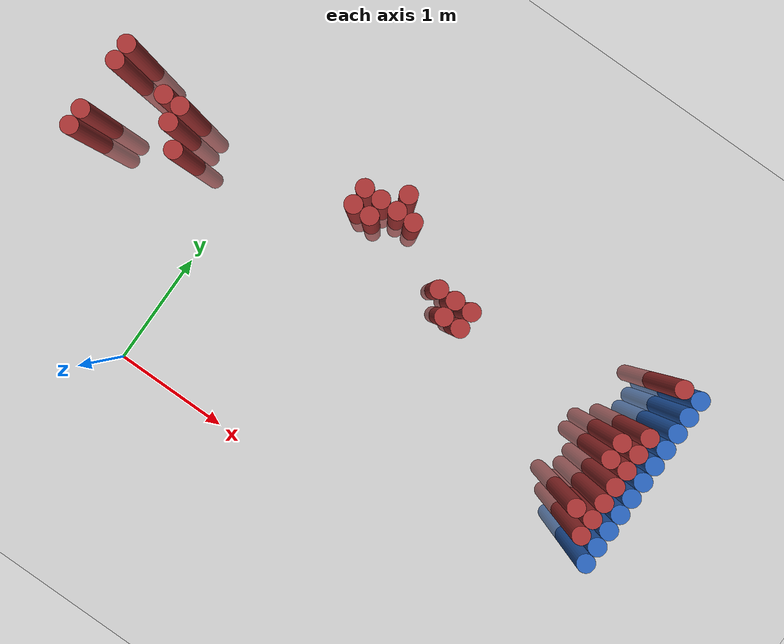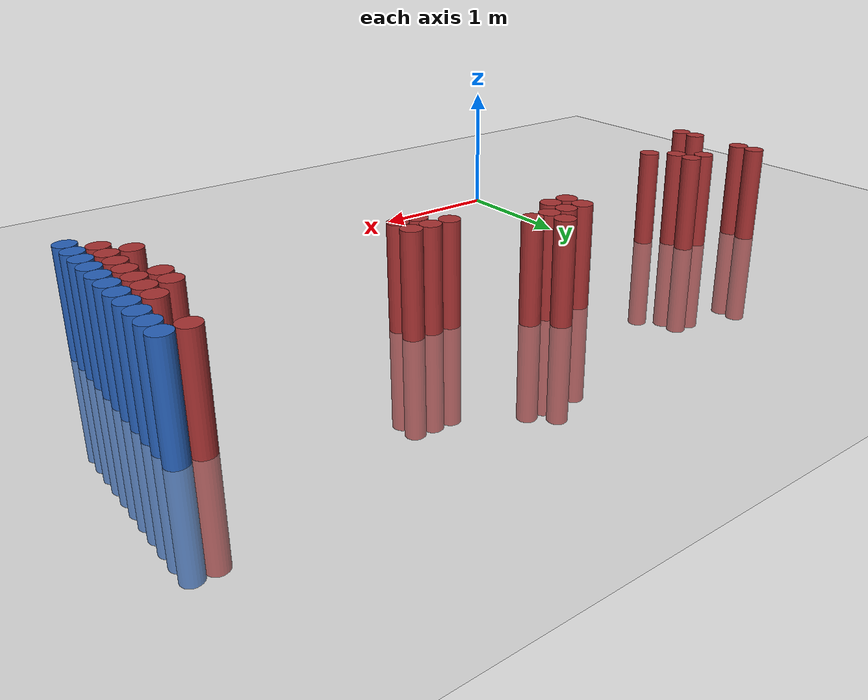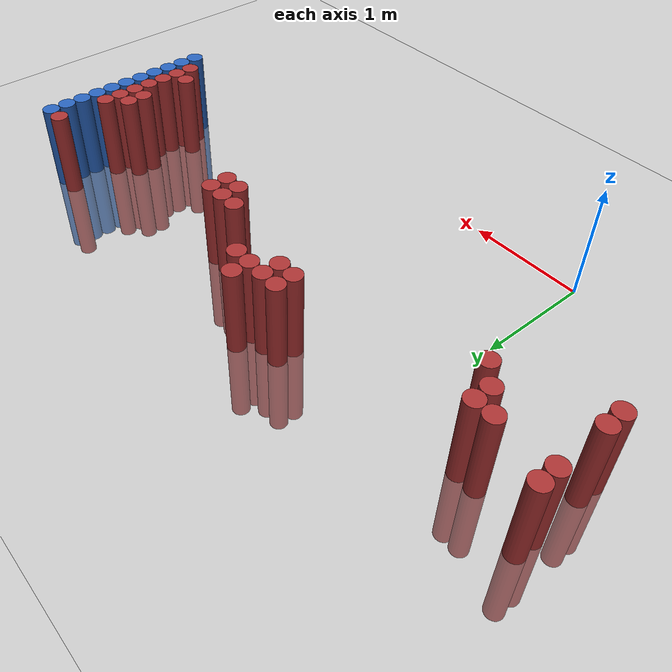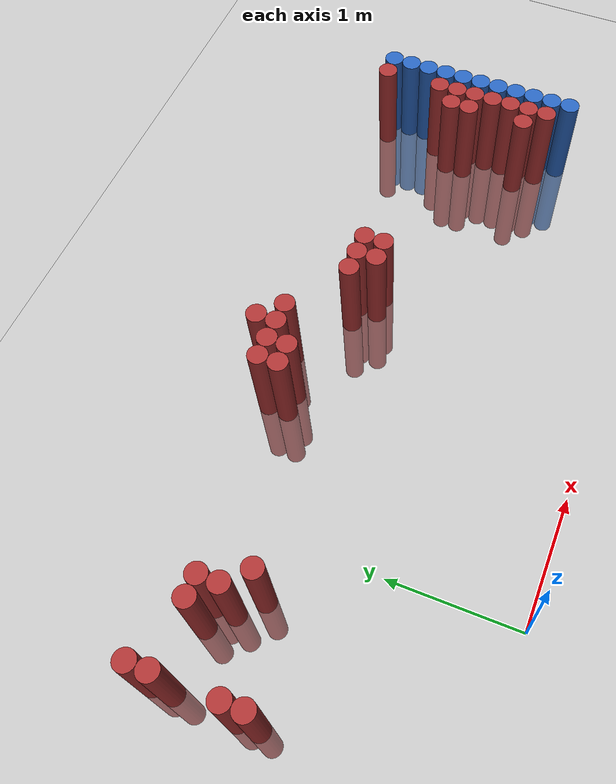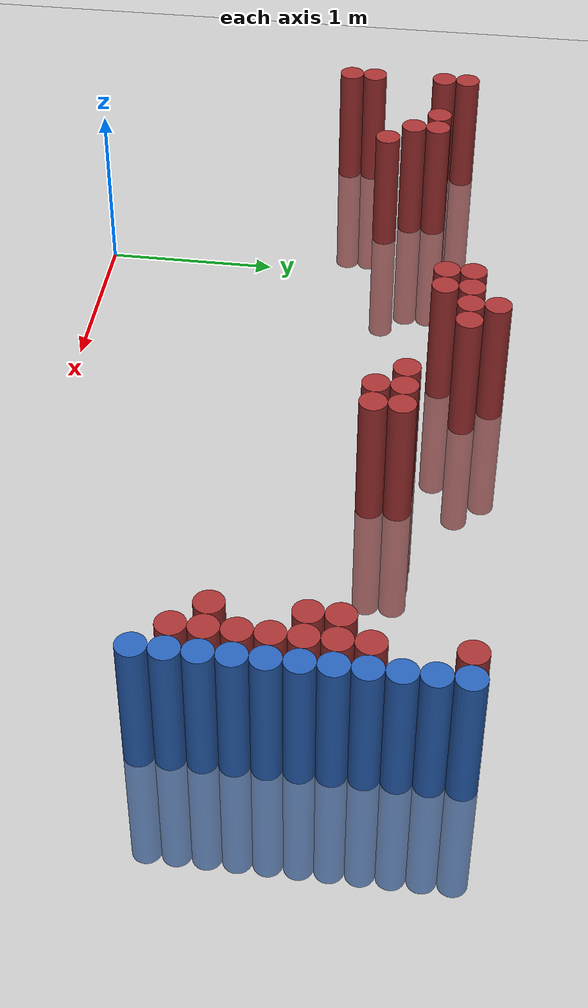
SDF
<sdf version="1.6">
 <world name="default">
  <model name="ground_plane">
   <static>1</static>
   <link name="link">
    <collision name="collision">
     <geometry><plane><normal>0 0 1</normal><size>100 100</size></plane></geometry>
     <surface><friction><ode><mu>100</mu><mu2>50</mu2></ode></friction></surface>
    </collision>
    <visual name="visual">
     <cast_shadows>0</cast_shadows>
     <geometry><plane><normal>0 0 1</normal><size>100 100</size></plane></geometry>
     <material>
      <script><uri>file://media/materials/scripts/gazebo.material</uri><name>Gazebo/Grey</name></script>
     </material>
    </visual>
   </link>
  </model>
  <model name="unit_cylinder_128">
   <static>1</static>
   <pose>3.925000 1.075000 0.000000 0.000000 0.000000 0.000000</pose>
   <link name="link">
    <inertial>
     <mass>1</mass>
     <inertia><ixx>0.145833</ixx><ixy>0</ixy><ixz>0</ixz><iyy>0.145833</iyy><iyz>0</iyz><izz>0.125</izz></inertia>
    </inertial>
    <collision name="collision">
     <geometry><cylinder><radius>0.075000</radius><length>1.5</length></cylinder></geometry>
    </collision>
    <visual name="visual">
     <geometry><cylinder><radius>0.075000</radius><length>1.5</length></cylinder></geometry>
     <material>
      <ambient>0.152000 0.379000 0.720000 1</ambient>
      <diffuse>0.152000 0.379000 0.720000 1</diffuse>
     </material>
     <material>
      <script><name>Gazebo/Grey</name><uri>file://media/materials/scripts/gazebo.material</uri></script>
     </material>
    </visual>
   </link>
  </model>
  <model name="unit_cylinder_130">
   <static>1</static>
   <pose>3.925000 1.225000 0.000000 0.000000 0.000000 0.000000</pose>
   <link name="link">
    <inertial>
     <mass>1</mass>
     <inertia><ixx>0.145833</ixx><ixy>0</ixy><ixz>0</ixz><iyy>0.145833</iyy><iyz>0</iyz><izz>0.125</izz></inertia>
    </inertial>
    <collision name="collision">
     <geometry><cylinder><radius>0.075000</radius><length>1.5</length></cylinder></geometry>
    </collision>
    <visual name="visual">
     <geometry><cylinder><radius>0.075000</radius><length>1.5</length></cylinder></geometry>
     <material>
      <ambient>0.152000 0.379000 0.720000 1</ambient>
      <diffuse>0.152000 0.379000 0.720000 1</diffuse>
     </material>
     <material>
      <script><name>Gazebo/Grey</name><uri>file://media/materials/scripts/gazebo.material</uri></script>
     </material>
    </visual>
   </link>
  </model>
  <model name="unit_cylinder_132">
   <static>1</static>
   <pose>3.925000 1.375000 0.000000 0.000000 0.000000 0.000000</pose>
   <link name="link">
    <inertial>
     <mass>1</mass>
     <inertia><ixx>0.145833</ixx><ixy>0</ixy><ixz>0</ixz><iyy>0.145833</iyy><iyz>0</iyz><izz>0.125</izz></inertia>
    </inertial>
    <collision name="collision">
     <geometry><cylinder><radius>0.075000</radius><length>1.5</length></cylinder></geometry>
    </collision>
    <visual name="visual">
     <geometry><cylinder><radius>0.075000</radius><length>1.5</length></cylinder></geometry>
     <material>
      <ambient>0.152000 0.379000 0.720000 1</ambient>
      <diffuse>0.152000 0.379000 0.720000 1</diffuse>
     </material>
     <material>
      <script><name>Gazebo/Grey</name><uri>file://media/materials/scripts/gazebo.material</uri></script>
     </material>
    </visual>
   </link>
  </model>
  <model name="unit_cylinder_134">
   <static>1</static>
   <pose>3.925000 1.525000 0.000000 0.000000 0.000000 0.000000</pose>
   <link name="link">
    <inertial>
     <mass>1</mass>
     <inertia><ixx>0.145833</ixx><ixy>0</ixy><ixz>0</ixz><iyy>0.145833</iyy><iyz>0</iyz><izz>0.125</izz></inertia>
    </inertial>
    <collision name="collision">
     <geometry><cylinder><radius>0.075000</radius><length>1.5</length></cylinder></geometry>
    </collision>
    <visual name="visual">
     <geometry><cylinder><radius>0.075000</radius><length>1.5</length></cylinder></geometry>
     <material>
      <ambient>0.152000 0.379000 0.720000 1</ambient>
      <diffuse>0.152000 0.379000 0.720000 1</diffuse>
     </material>
     <material>
      <script><name>Gazebo/Grey</name><uri>file://media/materials/scripts/gazebo.material</uri></script>
     </material>
    </visual>
   </link>
  </model>
  <model name="unit_cylinder_136">
   <static>1</static>
   <pose>3.925000 1.675000 0.000000 0.000000 0.000000 0.000000</pose>
   <link name="link">
    <inertial>
     <mass>1</mass>
     <inertia><ixx>0.145833</ixx><ixy>0</ixy><ixz>0</ixz><iyy>0.145833</iyy><iyz>0</iyz><izz>0.125</izz></inertia>
    </inertial>
    <collision name="collision">
     <geometry><cylinder><radius>0.075000</radius><length>1.5</length></cylinder></geometry>
    </collision>
    <visual name="visual">
     <geometry><cylinder><radius>0.075000</radius><length>1.5</length></cylinder></geometry>
     <material>
      <ambient>0.152000 0.379000 0.720000 1</ambient>
      <diffuse>0.152000 0.379000 0.720000 1</diffuse>
     </material>
     <material>
      <script><name>Gazebo/Grey</name><uri>file://media/materials/scripts/gazebo.material</uri></script>
     </material>
    </visual>
   </link>
  </model>
  <model name="unit_cylinder_138">
   <static>1</static>
   <pose>3.925000 1.825000 0.000000 0.000000 0.000000 0.000000</pose>
   <link name="link">
    <inertial>
     <mass>1</mass>
     <inertia><ixx>0.145833</ixx><ixy>0</ixy><ixz>0</ixz><iyy>0.145833</iyy><iyz>0</iyz><izz>0.125</izz></inertia>
    </inertial>
    <collision name="collision">
     <geometry><cylinder><radius>0.075000</radius><length>1.5</length></cylinder></geometry>
    </collision>
    <visual name="visual">
     <geometry><cylinder><radius>0.075000</radius><length>1.5</length></cylinder></geometry>
     <material>
      <ambient>0.152000 0.379000 0.720000 1</ambient>
      <diffuse>0.152000 0.379000 0.720000 1</diffuse>
     </material>
     <material>
      <script><name>Gazebo/Grey</name><uri>file://media/materials/scripts/gazebo.material</uri></script>
     </material>
    </visual>
   </link>
  </model>
  <model name="unit_cylinder_140">
   <static>1</static>
   <pose>3.925000 1.975000 0.000000 0.000000 0.000000 0.000000</pose>
   <link name="link">
    <inertial>
     <mass>1</mass>
     <inertia><ixx>0.145833</ixx><ixy>0</ixy><ixz>0</ixz><iyy>0.145833</iyy><iyz>0</iyz><izz>0.125</izz></inertia>
    </inertial>
    <collision name="collision">
     <geometry><cylinder><radius>0.075000</radius><length>1.5</length></cylinder></geometry>
    </collision>
    <visual name="visual">
     <geometry><cylinder><radius>0.075000</radius><length>1.5</length></cylinder></geometry>
     <material>
      <ambient>0.152000 0.379000 0.720000 1</ambient>
      <diffuse>0.152000 0.379000 0.720000 1</diffuse>
     </material>
     <material>
      <script><name>Gazebo/Grey</name><uri>file://media/materials/scripts/gazebo.material</uri></script>
     </material>
    </visual>
   </link>
  </model>
  <model name="unit_cylinder_142">
   <static>1</static>
   <pose>3.925000 2.125000 0.000000 0.000000 0.000000 0.000000</pose>
   <link name="link">
    <inertial>
     <mass>1</mass>
     <inertia><ixx>0.145833</ixx><ixy>0</ixy><ixz>0</ixz><iyy>0.145833</iyy><iyz>0</iyz><izz>0.125</izz></inertia>
    </inertial>
    <collision name="collision">
     <geometry><cylinder><radius>0.075000</radius><length>1.5</length></cylinder></geometry>
    </collision>
    <visual name="visual">
     <geometry><cylinder><radius>0.075000</radius><length>1.5</length></cylinder></geometry>
     <material>
      <ambient>0.152000 0.379000 0.720000 1</ambient>
      <diffuse>0.152000 0.379000 0.720000 1</diffuse>
     </material>
     <material>
      <script><name>Gazebo/Grey</name><uri>file://media/materials/scripts/gazebo.material</uri></script>
     </material>
    </visual>
   </link>
  </model>
  <model name="unit_cylinder_144">
   <static>1</static>
   <pose>3.925000 2.275000 0.000000 0.000000 0.000000 0.000000</pose>
   <link name="link">
    <inertial>
     <mass>1</mass>
     <inertia><ixx>0.145833</ixx><ixy>0</ixy><ixz>0</ixz><iyy>0.145833</iyy><iyz>0</iyz><izz>0.125</izz></inertia>
    </inertial>
    <collision name="collision">
     <geometry><cylinder><radius>0.075000</radius><length>1.5</length></cylinder></geometry>
    </collision>
    <visual name="visual">
     <geometry><cylinder><radius>0.075000</radius><length>1.5</length></cylinder></geometry>
     <material>
      <ambient>0.152000 0.379000 0.720000 1</ambient>
      <diffuse>0.152000 0.379000 0.720000 1</diffuse>
     </material>
     <material>
      <script><name>Gazebo/Grey</name><uri>file://media/materials/scripts/gazebo.material</uri></script>
     </material>
    </visual>
   </link>
  </model>
  <model name="unit_cylinder_146">
   <static>1</static>
   <pose>3.925000 2.425000 0.000000 0.000000 0.000000 0.000000</pose>
   <link name="link">
    <inertial>
     <mass>1</mass>
     <inertia><ixx>0.145833</ixx><ixy>0</ixy><ixz>0</ixz><iyy>0.145833</iyy><iyz>0</iyz><izz>0.125</izz></inertia>
    </inertial>
    <collision name="collision">
     <geometry><cylinder><radius>0.075000</radius><length>1.5</length></cylinder></geometry>
    </collision>
    <visual name="visual">
     <geometry><cylinder><radius>0.075000</radius><length>1.5</length></cylinder></geometry>
     <material>
      <ambient>0.152000 0.379000 0.720000 1</ambient>
      <diffuse>0.152000 0.379000 0.720000 1</diffuse>
     </material>
     <material>
      <script><name>Gazebo/Grey</name><uri>file://media/materials/scripts/gazebo.material</uri></script>
     </material>
    </visual>
   </link>
  </model>
  <model name="unit_cylinder_314">
   <static>1</static>
   <pose>-1.175000 1.375000 0.000000 0.000000 0.000000 0.000000</pose>
   <link name="link">
    <inertial>
     <mass>1</mass>
     <inertia><ixx>0.145833</ixx><ixy>0</ixy><ixz>0</ixz><iyy>0.145833</iyy><iyz>0</iyz><izz>0.125</izz></inertia>
    </inertial>
    <collision name="collision">
     <geometry><cylinder><radius>0.075000</radius><length>1.5</length></cylinder></geometry>
    </collision>
    <visual name="visual">
     <geometry><cylinder><radius>0.075000</radius><length>1.5</length></cylinder></geometry>
     <material>
      <ambient>0.648000 0.192000 0.192000 1</ambient>
      <diffuse>0.648000 0.192000 0.192000 1</diffuse>
     </material>
     <material>
      <script><name>Gazebo/Grey</name><uri>file://media/materials/scripts/gazebo.material</uri></script>
     </material>
    </visual>
   </link>
  </model>
  <model name="unit_cylinder_315">
   <static>1</static>
   <pose>-1.175000 1.525000 0.000000 0.000000 0.000000 0.000000</pose>
   <link name="link">
    <inertial>
     <mass>1</mass>
     <inertia><ixx>0.145833</ixx><ixy>0</ixy><ixz>0</ixz><iyy>0.145833</iyy><iyz>0</iyz><izz>0.125</izz></inertia>
    </inertial>
    <collision name="collision">
     <geometry><cylinder><radius>0.075000</radius><length>1.5</length></cylinder></geometry>
    </collision>
    <visual name="visual">
     <geometry><cylinder><radius>0.075000</radius><length>1.5</length></cylinder></geometry>
     <material>
      <ambient>0.648000 0.192000 0.192000 1</ambient>
      <diffuse>0.648000 0.192000 0.192000 1</diffuse>
     </material>
     <material>
      <script><name>Gazebo/Grey</name><uri>file://media/materials/scripts/gazebo.material</uri></script>
     </material>
    </visual>
   </link>
  </model>
  <model name="unit_cylinder_316">
   <static>1</static>
   <pose>-1.175000 1.975000 0.000000 0.000000 0.000000 0.000000</pose>
   <link name="link">
    <inertial>
     <mass>1</mass>
     <inertia><ixx>0.145833</ixx><ixy>0</ixy><ixz>0</ixz><iyy>0.145833</iyy><iyz>0</iyz><izz>0.125</izz></inertia>
    </inertial>
    <collision name="collision">
     <geometry><cylinder><radius>0.075000</radius><length>1.5</length></cylinder></geometry>
    </collision>
    <visual name="visual">
     <geometry><cylinder><radius>0.075000</radius><length>1.5</length></cylinder></geometry>
     <material>
      <ambient>0.648000 0.192000 0.192000 1</ambient>
      <diffuse>0.648000 0.192000 0.192000 1</diffuse>
     </material>
     <material>
      <script><name>Gazebo/Grey</name><uri>file://media/materials/scripts/gazebo.material</uri></script>
     </material>
    </visual>
   </link>
  </model>
  <model name="unit_cylinder_317">
   <static>1</static>
   <pose>-1.175000 2.125000 0.000000 0.000000 0.000000 0.000000</pose>
   <link name="link">
    <inertial>
     <mass>1</mass>
     <inertia><ixx>0.145833</ixx><ixy>0</ixy><ixz>0</ixz><iyy>0.145833</iyy><iyz>0</iyz><izz>0.125</izz></inertia>
    </inertial>
    <collision name="collision">
     <geometry><cylinder><radius>0.075000</radius><length>1.5</length></cylinder></geometry>
    </collision>
    <visual name="visual">
     <geometry><cylinder><radius>0.075000</radius><length>1.5</length></cylinder></geometry>
     <material>
      <ambient>0.648000 0.192000 0.192000 1</ambient>
      <diffuse>0.648000 0.192000 0.192000 1</diffuse>
     </material>
     <material>
      <script><name>Gazebo/Grey</name><uri>file://media/materials/scripts/gazebo.material</uri></script>
     </material>
    </visual>
   </link>
  </model>
  <model name="unit_cylinder_326">
   <static>1</static>
   <pose>-0.725000 1.975000 0.000000 0.000000 0.000000 0.000000</pose>
   <link name="link">
    <inertial>
     <mass>1</mass>
     <inertia><ixx>0.145833</ixx><ixy>0</ixy><ixz>0</ixz><iyy>0.145833</iyy><iyz>0</iyz><izz>0.125</izz></inertia>
    </inertial>
    <collision name="collision">
     <geometry><cylinder><radius>0.075000</radius><length>1.5</length></cylinder></geometry>
    </collision>
    <visual name="visual">
     <geometry><cylinder><radius>0.075000</radius><length>1.5</length></cylinder></geometry>
     <material>
      <ambient>0.648000 0.192000 0.192000 1</ambient>
      <diffuse>0.648000 0.192000 0.192000 1</diffuse>
     </material>
     <material>
      <script><name>Gazebo/Grey</name><uri>file://media/materials/scripts/gazebo.material</uri></script>
     </material>
    </visual>
   </link>
  </model>
  <model name="unit_cylinder_333">
   <static>1</static>
   <pose>-0.575000 1.825000 0.000000 0.000000 0.000000 0.000000</pose>
   <link name="link">
    <inertial>
     <mass>1</mass>
     <inertia><ixx>0.145833</ixx><ixy>0</ixy><ixz>0</ixz><iyy>0.145833</iyy><iyz>0</iyz><izz>0.125</izz></inertia>
    </inertial>
    <collision name="collision">
     <geometry><cylinder><radius>0.075000</radius><length>1.5</length></cylinder></geometry>
    </collision>
    <visual name="visual">
     <geometry><cylinder><radius>0.075000</radius><length>1.5</length></cylinder></geometry>
     <material>
      <ambient>0.648000 0.192000 0.192000 1</ambient>
      <diffuse>0.648000 0.192000 0.192000 1</diffuse>
     </material>
     <material>
      <script><name>Gazebo/Grey</name><uri>file://media/materials/scripts/gazebo.material</uri></script>
     </material>
    </visual>
   </link>
  </model>
  <model name="unit_cylinder_334">
   <static>1</static>
   <pose>-0.575000 1.975000 0.000000 0.000000 0.000000 0.000000</pose>
   <link name="link">
    <inertial>
     <mass>1</mass>
     <inertia><ixx>0.145833</ixx><ixy>0</ixy><ixz>0</ixz><iyy>0.145833</iyy><iyz>0</iyz><izz>0.125</izz></inertia>
    </inertial>
    <collision name="collision">
     <geometry><cylinder><radius>0.075000</radius><length>1.5</length></cylinder></geometry>
    </collision>
    <visual name="visual">
     <geometry><cylinder><radius>0.075000</radius><length>1.5</length></cylinder></geometry>
     <material>
      <ambient>0.648000 0.192000 0.192000 1</ambient>
      <diffuse>0.648000 0.192000 0.192000 1</diffuse>
     </material>
     <material>
      <script><name>Gazebo/Grey</name><uri>file://media/materials/scripts/gazebo.material</uri></script>
     </material>
    </visual>
   </link>
  </model>
  <model name="unit_cylinder_339">
   <static>1</static>
   <pose>-0.425000 1.675000 0.000000 0.000000 0.000000 0.000000</pose>
   <link name="link">
    <inertial>
     <mass>1</mass>
     <inertia><ixx>0.145833</ixx><ixy>0</ixy><ixz>0</ixz><iyy>0.145833</iyy><iyz>0</iyz><izz>0.125</izz></inertia>
    </inertial>
    <collision name="collision">
     <geometry><cylinder><radius>0.075000</radius><length>1.5</length></cylinder></geometry>
    </collision>
    <visual name="visual">
     <geometry><cylinder><radius>0.075000</radius><length>1.5</length></cylinder></geometry>
     <material>
      <ambient>0.648000 0.192000 0.192000 1</ambient>
      <diffuse>0.648000 0.192000 0.192000 1</diffuse>
     </material>
     <material>
      <script><name>Gazebo/Grey</name><uri>file://media/materials/scripts/gazebo.material</uri></script>
     </material>
    </visual>
   </link>
  </model>
  <model name="unit_cylinder_351">
   <static>1</static>
   <pose>0.925000 2.125000 0.000000 0.000000 0.000000 0.000000</pose>
   <link name="link">
    <inertial>
     <mass>1</mass>
     <inertia><ixx>0.145833</ixx><ixy>0</ixy><ixz>0</ixz><iyy>0.145833</iyy><iyz>0</iyz><izz>0.125</izz></inertia>
    </inertial>
    <collision name="collision">
     <geometry><cylinder><radius>0.075000</radius><length>1.5</length></cylinder></geometry>
    </collision>
    <visual name="visual">
     <geometry><cylinder><radius>0.075000</radius><length>1.5</length></cylinder></geometry>
     <material>
      <ambient>0.648000 0.192000 0.192000 1</ambient>
      <diffuse>0.648000 0.192000 0.192000 1</diffuse>
     </material>
     <material>
      <script><name>Gazebo/Grey</name><uri>file://media/materials/scripts/gazebo.material</uri></script>
     </material>
    </visual>
   </link>
  </model>
  <model name="unit_cylinder_352">
   <static>1</static>
   <pose>0.925000 2.275000 0.000000 0.000000 0.000000 0.000000</pose>
   <link name="link">
    <inertial>
     <mass>1</mass>
     <inertia><ixx>0.145833</ixx><ixy>0</ixy><ixz>0</ixz><iyy>0.145833</iyy><iyz>0</iyz><izz>0.125</izz></inertia>
    </inertial>
    <collision name="collision">
     <geometry><cylinder><radius>0.075000</radius><length>1.5</length></cylinder></geometry>
    </collision>
    <visual name="visual">
     <geometry><cylinder><radius>0.075000</radius><length>1.5</length></cylinder></geometry>
     <material>
      <ambient>0.648000 0.192000 0.192000 1</ambient>
      <diffuse>0.648000 0.192000 0.192000 1</diffuse>
     </material>
     <material>
      <script><name>Gazebo/Grey</name><uri>file://media/materials/scripts/gazebo.material</uri></script>
     </material>
    </visual>
   </link>
  </model>
  <model name="unit_cylinder_359">
   <static>1</static>
   <pose>1.075000 2.125000 0.000000 0.000000 0.000000 0.000000</pose>
   <link name="link">
    <inertial>
     <mass>1</mass>
     <inertia><ixx>0.145833</ixx><ixy>0</ixy><ixz>0</ixz><iyy>0.145833</iyy><iyz>0</iyz><izz>0.125</izz></inertia>
    </inertial>
    <collision name="collision">
     <geometry><cylinder><radius>0.075000</radius><length>1.5</length></cylinder></geometry>
    </collision>
    <visual name="visual">
     <geometry><cylinder><radius>0.075000</radius><length>1.5</length></cylinder></geometry>
     <material>
      <ambient>0.648000 0.192000 0.192000 1</ambient>
      <diffuse>0.648000 0.192000 0.192000 1</diffuse>
     </material>
     <material>
      <script><name>Gazebo/Grey</name><uri>file://media/materials/scripts/gazebo.material</uri></script>
     </material>
    </visual>
   </link>
  </model>
  <model name="unit_cylinder_360">
   <static>1</static>
   <pose>1.075000 2.275000 0.000000 0.000000 0.000000 0.000000</pose>
   <link name="link">
    <inertial>
     <mass>1</mass>
     <inertia><ixx>0.145833</ixx><ixy>0</ixy><ixz>0</ixz><iyy>0.145833</iyy><iyz>0</iyz><izz>0.125</izz></inertia>
    </inertial>
    <collision name="collision">
     <geometry><cylinder><radius>0.075000</radius><length>1.5</length></cylinder></geometry>
    </collision>
    <visual name="visual">
     <geometry><cylinder><radius>0.075000</radius><length>1.5</length></cylinder></geometry>
     <material>
      <ambient>0.648000 0.192000 0.192000 1</ambient>
      <diffuse>0.648000 0.192000 0.192000 1</diffuse>
     </material>
     <material>
      <script><name>Gazebo/Grey</name><uri>file://media/materials/scripts/gazebo.material</uri></script>
     </material>
    </visual>
   </link>
  </model>
  <model name="unit_cylinder_368">
   <static>1</static>
   <pose>1.225000 2.275000 0.000000 0.000000 0.000000 0.000000</pose>
   <link name="link">
    <inertial>
     <mass>1</mass>
     <inertia><ixx>0.145833</ixx><ixy>0</ixy><ixz>0</ixz><iyy>0.145833</iyy><iyz>0</iyz><izz>0.125</izz></inertia>
    </inertial>
    <collision name="collision">
     <geometry><cylinder><radius>0.075000</radius><length>1.5</length></cylinder></geometry>
    </collision>
    <visual name="visual">
     <geometry><cylinder><radius>0.075000</radius><length>1.5</length></cylinder></geometry>
     <material>
      <ambient>0.648000 0.192000 0.192000 1</ambient>
      <diffuse>0.648000 0.192000 0.192000 1</diffuse>
     </material>
     <material>
      <script><name>Gazebo/Grey</name><uri>file://media/materials/scripts/gazebo.material</uri></script>
     </material>
    </visual>
   </link>
  </model>
  <model name="unit_cylinder_369">
   <static>1</static>
   <pose>1.225000 2.425000 0.000000 0.000000 0.000000 0.000000</pose>
   <link name="link">
    <inertial>
     <mass>1</mass>
     <inertia><ixx>0.145833</ixx><ixy>0</ixy><ixz>0</ixz><iyy>0.145833</iyy><iyz>0</iyz><izz>0.125</izz></inertia>
    </inertial>
    <collision name="collision">
     <geometry><cylinder><radius>0.075000</radius><length>1.5</length></cylinder></geometry>
    </collision>
    <visual name="visual">
     <geometry><cylinder><radius>0.075000</radius><length>1.5</length></cylinder></geometry>
     <material>
      <ambient>0.648000 0.192000 0.192000 1</ambient>
      <diffuse>0.648000 0.192000 0.192000 1</diffuse>
     </material>
     <material>
      <script><name>Gazebo/Grey</name><uri>file://media/materials/scripts/gazebo.material</uri></script>
     </material>
    </visual>
   </link>
  </model>
  <model name="unit_cylinder_372">
   <static>1</static>
   <pose>1.375000 2.275000 0.000000 0.000000 0.000000 0.000000</pose>
   <link name="link">
    <inertial>
     <mass>1</mass>
     <inertia><ixx>0.145833</ixx><ixy>0</ixy><ixz>0</ixz><iyy>0.145833</iyy><iyz>0</iyz><izz>0.125</izz></inertia>
    </inertial>
    <collision name="collision">
     <geometry><cylinder><radius>0.075000</radius><length>1.5</length></cylinder></geometry>
    </collision>
    <visual name="visual">
     <geometry><cylinder><radius>0.075000</radius><length>1.5</length></cylinder></geometry>
     <material>
      <ambient>0.648000 0.192000 0.192000 1</ambient>
      <diffuse>0.648000 0.192000 0.192000 1</diffuse>
     </material>
     <material>
      <script><name>Gazebo/Grey</name><uri>file://media/materials/scripts/gazebo.material</uri></script>
     </material>
    </visual>
   </link>
  </model>
  <model name="unit_cylinder_380">
   <static>1</static>
   <pose>1.825000 1.975000 0.000000 0.000000 0.000000 0.000000</pose>
   <link name="link">
    <inertial>
     <mass>1</mass>
     <inertia><ixx>0.145833</ixx><ixy>0</ixy><ixz>0</ixz><iyy>0.145833</iyy><iyz>0</iyz><izz>0.125</izz></inertia>
    </inertial>
    <collision name="collision">
     <geometry><cylinder><radius>0.075000</radius><length>1.5</length></cylinder></geometry>
    </collision>
    <visual name="visual">
     <geometry><cylinder><radius>0.075000</radius><length>1.5</length></cylinder></geometry>
     <material>
      <ambient>0.648000 0.192000 0.192000 1</ambient>
      <diffuse>0.648000 0.192000 0.192000 1</diffuse>
     </material>
     <material>
      <script><name>Gazebo/Grey</name><uri>file://media/materials/scripts/gazebo.material</uri></script>
     </material>
    </visual>
   </link>
  </model>
  <model name="unit_cylinder_383">
   <static>1</static>
   <pose>1.975000 1.825000 0.000000 0.000000 0.000000 0.000000</pose>
   <link name="link">
    <inertial>
     <mass>1</mass>
     <inertia><ixx>0.145833</ixx><ixy>0</ixy><ixz>0</ixz><iyy>0.145833</iyy><iyz>0</iyz><izz>0.125</izz></inertia>
    </inertial>
    <collision name="collision">
     <geometry><cylinder><radius>0.075000</radius><length>1.5</length></cylinder></geometry>
    </collision>
    <visual name="visual">
     <geometry><cylinder><radius>0.075000</radius><length>1.5</length></cylinder></geometry>
     <material>
      <ambient>0.648000 0.192000 0.192000 1</ambient>
      <diffuse>0.648000 0.192000 0.192000 1</diffuse>
     </material>
     <material>
      <script><name>Gazebo/Grey</name><uri>file://media/materials/scripts/gazebo.material</uri></script>
     </material>
    </visual>
   </link>
  </model>
  <model name="unit_cylinder_384">
   <static>1</static>
   <pose>1.975000 1.975000 0.000000 0.000000 0.000000 0.000000</pose>
   <link name="link">
    <inertial>
     <mass>1</mass>
     <inertia><ixx>0.145833</ixx><ixy>0</ixy><ixz>0</ixz><iyy>0.145833</iyy><iyz>0</iyz><izz>0.125</izz></inertia>
    </inertial>
    <collision name="collision">
     <geometry><cylinder><radius>0.075000</radius><length>1.5</length></cylinder></geometry>
    </collision>
    <visual name="visual">
     <geometry><cylinder><radius>0.075000</radius><length>1.5</length></cylinder></geometry>
     <material>
      <ambient>0.648000 0.192000 0.192000 1</ambient>
      <diffuse>0.648000 0.192000 0.192000 1</diffuse>
     </material>
     <material>
      <script><name>Gazebo/Grey</name><uri>file://media/materials/scripts/gazebo.material</uri></script>
     </material>
    </visual>
   </link>
  </model>
  <model name="unit_cylinder_387">
   <static>1</static>
   <pose>2.125000 1.825000 0.000000 0.000000 0.000000 0.000000</pose>
   <link name="link">
    <inertial>
     <mass>1</mass>
     <inertia><ixx>0.145833</ixx><ixy>0</ixy><ixz>0</ixz><iyy>0.145833</iyy><iyz>0</iyz><izz>0.125</izz></inertia>
    </inertial>
    <collision name="collision">
     <geometry><cylinder><radius>0.075000</radius><length>1.5</length></cylinder></geometry>
    </collision>
    <visual name="visual">
     <geometry><cylinder><radius>0.075000</radius><length>1.5</length></cylinder></geometry>
     <material>
      <ambient>0.648000 0.192000 0.192000 1</ambient>
      <diffuse>0.648000 0.192000 0.192000 1</diffuse>
     </material>
     <material>
      <script><name>Gazebo/Grey</name><uri>file://media/materials/scripts/gazebo.material</uri></script>
     </material>
    </visual>
   </link>
  </model>
  <model name="unit_cylinder_388">
   <static>1</static>
   <pose>2.125000 1.975000 0.000000 0.000000 0.000000 0.000000</pose>
   <link name="link">
    <inertial>
     <mass>1</mass>
     <inertia><ixx>0.145833</ixx><ixy>0</ixy><ixz>0</ixz><iyy>0.145833</iyy><iyz>0</iyz><izz>0.125</izz></inertia>
    </inertial>
    <collision name="collision">
     <geometry><cylinder><radius>0.075000</radius><length>1.5</length></cylinder></geometry>
    </collision>
    <visual name="visual">
     <geometry><cylinder><radius>0.075000</radius><length>1.5</length></cylinder></geometry>
     <material>
      <ambient>0.648000 0.192000 0.192000 1</ambient>
      <diffuse>0.648000 0.192000 0.192000 1</diffuse>
     </material>
     <material>
      <script><name>Gazebo/Grey</name><uri>file://media/materials/scripts/gazebo.material</uri></script>
     </material>
    </visual>
   </link>
  </model>
  <model name="unit_cylinder_428">
   <static>1</static>
   <pose>3.625000 1.225000 0.000000 0.000000 0.000000 0.000000</pose>
   <link name="link">
    <inertial>
     <mass>1</mass>
     <inertia><ixx>0.145833</ixx><ixy>0</ixy><ixz>0</ixz><iyy>0.145833</iyy><iyz>0</iyz><izz>0.125</izz></inertia>
    </inertial>
    <collision name="collision">
     <geometry><cylinder><radius>0.075000</radius><length>1.5</length></cylinder></geometry>
    </collision>
    <visual name="visual">
     <geometry><cylinder><radius>0.075000</radius><length>1.5</length></cylinder></geometry>
     <material>
      <ambient>0.648000 0.192000 0.192000 1</ambient>
      <diffuse>0.648000 0.192000 0.192000 1</diffuse>
     </material>
     <material>
      <script><name>Gazebo/Grey</name><uri>file://media/materials/scripts/gazebo.material</uri></script>
     </material>
    </visual>
   </link>
  </model>
  <model name="unit_cylinder_429">
   <static>1</static>
   <pose>3.625000 1.675000 0.000000 0.000000 0.000000 0.000000</pose>
   <link name="link">
    <inertial>
     <mass>1</mass>
     <inertia><ixx>0.145833</ixx><ixy>0</ixy><ixz>0</ixz><iyy>0.145833</iyy><iyz>0</iyz><izz>0.125</izz></inertia>
    </inertial>
    <collision name="collision">
     <geometry><cylinder><radius>0.075000</radius><length>1.5</length></cylinder></geometry>
    </collision>
    <visual name="visual">
     <geometry><cylinder><radius>0.075000</radius><length>1.5</length></cylinder></geometry>
     <material>
      <ambient>0.648000 0.192000 0.192000 1</ambient>
      <diffuse>0.648000 0.192000 0.192000 1</diffuse>
     </material>
     <material>
      <script><name>Gazebo/Grey</name><uri>file://media/materials/scripts/gazebo.material</uri></script>
     </material>
    </visual>
   </link>
  </model>
  <model name="unit_cylinder_430">
   <static>1</static>
   <pose>3.625000 1.825000 0.000000 0.000000 0.000000 0.000000</pose>
   <link name="link">
    <inertial>
     <mass>1</mass>
     <inertia><ixx>0.145833</ixx><ixy>0</ixy><ixz>0</ixz><iyy>0.145833</iyy><iyz>0</iyz><izz>0.125</izz></inertia>
    </inertial>
    <collision name="collision">
     <geometry><cylinder><radius>0.075000</radius><length>1.5</length></cylinder></geometry>
    </collision>
    <visual name="visual">
     <geometry><cylinder><radius>0.075000</radius><length>1.5</length></cylinder></geometry>
     <material>
      <ambient>0.648000 0.192000 0.192000 1</ambient>
      <diffuse>0.648000 0.192000 0.192000 1</diffuse>
     </material>
     <material>
      <script><name>Gazebo/Grey</name><uri>file://media/materials/scripts/gazebo.material</uri></script>
     </material>
    </visual>
   </link>
  </model>
  <model name="unit_cylinder_444">
   <static>1</static>
   <pose>3.775000 1.075000 0.000000 0.000000 0.000000 0.000000</pose>
   <link name="link">
    <inertial>
     <mass>1</mass>
     <inertia><ixx>0.145833</ixx><ixy>0</ixy><ixz>0</ixz><iyy>0.145833</iyy><iyz>0</iyz><izz>0.125</izz></inertia>
    </inertial>
    <collision name="collision">
     <geometry><cylinder><radius>0.075000</radius><length>1.5</length></cylinder></geometry>
    </collision>
    <visual name="visual">
     <geometry><cylinder><radius>0.075000</radius><length>1.5</length></cylinder></geometry>
     <material>
      <ambient>0.648000 0.192000 0.192000 1</ambient>
      <diffuse>0.648000 0.192000 0.192000 1</diffuse>
     </material>
     <material>
      <script><name>Gazebo/Grey</name><uri>file://media/materials/scripts/gazebo.material</uri></script>
     </material>
    </visual>
   </link>
  </model>
  <model name="unit_cylinder_445">
   <static>1</static>
   <pose>3.775000 1.225000 0.000000 0.000000 0.000000 0.000000</pose>
   <link name="link">
    <inertial>
     <mass>1</mass>
     <inertia><ixx>0.145833</ixx><ixy>0</ixy><ixz>0</ixz><iyy>0.145833</iyy><iyz>0</iyz><izz>0.125</izz></inertia>
    </inertial>
    <collision name="collision">
     <geometry><cylinder><radius>0.075000</radius><length>1.5</length></cylinder></geometry>
    </collision>
    <visual name="visual">
     <geometry><cylinder><radius>0.075000</radius><length>1.5</length></cylinder></geometry>
     <material>
      <ambient>0.648000 0.192000 0.192000 1</ambient>
      <diffuse>0.648000 0.192000 0.192000 1</diffuse>
     </material>
     <material>
      <script><name>Gazebo/Grey</name><uri>file://media/materials/scripts/gazebo.material</uri></script>
     </material>
    </visual>
   </link>
  </model>
  <model name="unit_cylinder_446">
   <static>1</static>
   <pose>3.775000 1.375000 0.000000 0.000000 0.000000 0.000000</pose>
   <link name="link">
    <inertial>
     <mass>1</mass>
     <inertia><ixx>0.145833</ixx><ixy>0</ixy><ixz>0</ixz><iyy>0.145833</iyy><iyz>0</iyz><izz>0.125</izz></inertia>
    </inertial>
    <collision name="collision">
     <geometry><cylinder><radius>0.075000</radius><length>1.5</length></cylinder></geometry>
    </collision>
    <visual name="visual">
     <geometry><cylinder><radius>0.075000</radius><length>1.5</length></cylinder></geometry>
     <material>
      <ambient>0.648000 0.192000 0.192000 1</ambient>
      <diffuse>0.648000 0.192000 0.192000 1</diffuse>
     </material>
     <material>
      <script><name>Gazebo/Grey</name><uri>file://media/materials/scripts/gazebo.material</uri></script>
     </material>
    </visual>
   </link>
  </model>
  <model name="unit_cylinder_447">
   <static>1</static>
   <pose>3.775000 1.525000 0.000000 0.000000 0.000000 0.000000</pose>
   <link name="link">
    <inertial>
     <mass>1</mass>
     <inertia><ixx>0.145833</ixx><ixy>0</ixy><ixz>0</ixz><iyy>0.145833</iyy><iyz>0</iyz><izz>0.125</izz></inertia>
    </inertial>
    <collision name="collision">
     <geometry><cylinder><radius>0.075000</radius><length>1.5</length></cylinder></geometry>
    </collision>
    <visual name="visual">
     <geometry><cylinder><radius>0.075000</radius><length>1.5</length></cylinder></geometry>
     <material>
      <ambient>0.648000 0.192000 0.192000 1</ambient>
      <diffuse>0.648000 0.192000 0.192000 1</diffuse>
     </material>
     <material>
      <script><name>Gazebo/Grey</name><uri>file://media/materials/scripts/gazebo.material</uri></script>
     </material>
    </visual>
   </link>
  </model>
  <model name="unit_cylinder_448">
   <static>1</static>
   <pose>3.775000 1.675000 0.000000 0.000000 0.000000 0.000000</pose>
   <link name="link">
    <inertial>
     <mass>1</mass>
     <inertia><ixx>0.145833</ixx><ixy>0</ixy><ixz>0</ixz><iyy>0.145833</iyy><iyz>0</iyz><izz>0.125</izz></inertia>
    </inertial>
    <collision name="collision">
     <geometry><cylinder><radius>0.075000</radius><length>1.5</length></cylinder></geometry>
    </collision>
    <visual name="visual">
     <geometry><cylinder><radius>0.075000</radius><length>1.5</length></cylinder></geometry>
     <material>
      <ambient>0.648000 0.192000 0.192000 1</ambient>
      <diffuse>0.648000 0.192000 0.192000 1</diffuse>
     </material>
     <material>
      <script><name>Gazebo/Grey</name><uri>file://media/materials/scripts/gazebo.material</uri></script>
     </material>
    </visual>
   </link>
  </model>
  <model name="unit_cylinder_449">
   <static>1</static>
   <pose>3.775000 1.825000 0.000000 0.000000 0.000000 0.000000</pose>
   <link name="link">
    <inertial>
     <mass>1</mass>
     <inertia><ixx>0.145833</ixx><ixy>0</ixy><ixz>0</ixz><iyy>0.145833</iyy><iyz>0</iyz><izz>0.125</izz></inertia>
    </inertial>
    <collision name="collision">
     <geometry><cylinder><radius>0.075000</radius><length>1.5</length></cylinder></geometry>
    </collision>
    <visual name="visual">
     <geometry><cylinder><radius>0.075000</radius><length>1.5</length></cylinder></geometry>
     <material>
      <ambient>0.648000 0.192000 0.192000 1</ambient>
      <diffuse>0.648000 0.192000 0.192000 1</diffuse>
     </material>
     <material>
      <script><name>Gazebo/Grey</name><uri>file://media/materials/scripts/gazebo.material</uri></script>
     </material>
    </visual>
   </link>
  </model>
  <model name="unit_cylinder_450">
   <static>1</static>
   <pose>3.775000 1.975000 0.000000 0.000000 0.000000 0.000000</pose>
   <link name="link">
    <inertial>
     <mass>1</mass>
     <inertia><ixx>0.145833</ixx><ixy>0</ixy><ixz>0</ixz><iyy>0.145833</iyy><iyz>0</iyz><izz>0.125</izz></inertia>
    </inertial>
    <collision name="collision">
     <geometry><cylinder><radius>0.075000</radius><length>1.5</length></cylinder></geometry>
    </collision>
    <visual name="visual">
     <geometry><cylinder><radius>0.075000</radius><length>1.5</length></cylinder></geometry>
     <material>
      <ambient>0.648000 0.192000 0.192000 1</ambient>
      <diffuse>0.648000 0.192000 0.192000 1</diffuse>
     </material>
     <material>
      <script><name>Gazebo/Grey</name><uri>file://media/materials/scripts/gazebo.material</uri></script>
     </material>
    </visual>
   </link>
  </model>
  <model name="unit_cylinder_451">
   <static>1</static>
   <pose>3.775000 2.425000 0.000000 0.000000 0.000000 0.000000</pose>
   <link name="link">
    <inertial>
     <mass>1</mass>
     <inertia><ixx>0.145833</ixx><ixy>0</ixy><ixz>0</ixz><iyy>0.145833</iyy><iyz>0</iyz><izz>0.125</izz></inertia>
    </inertial>
    <collision name="collision">
     <geometry><cylinder><radius>0.075000</radius><length>1.5</length></cylinder></geometry>
    </collision>
    <visual name="visual">
     <geometry><cylinder><radius>0.075000</radius><length>1.5</length></cylinder></geometry>
     <material>
      <ambient>0.648000 0.192000 0.192000 1</ambient>
      <diffuse>0.648000 0.192000 0.192000 1</diffuse>
     </material>
     <material>
      <script><name>Gazebo/Grey</name><uri>file://media/materials/scripts/gazebo.material</uri></script>
     </material>
    </visual>
   </link>
  </model>
  <model name="unit_cylinder_479">
   <static>1</static>
   <pose>3.925000 0.925000 0.000000 0.000000 0.000000 0.000000</pose>
   <link name="link">
    <inertial>
     <mass>1</mass>
     <inertia><ixx>0.145833</ixx><ixy>0</ixy><ixz>0</ixz><iyy>0.145833</iyy><iyz>0</iyz><izz>0.125</izz></inertia>
    </inertial>
    <collision name="collision">
     <geometry><cylinder><radius>0.075000</radius><length>1.5</length></cylinder></geometry>
    </collision>
    <visual name="visual">
     <geometry><cylinder><radius>0.075000</radius><length>1.5</length></cylinder></geometry>
     <material>
      <ambient>0.152000 0.379000 0.720000 1</ambient>
      <diffuse>0.152000 0.379000 0.720000 1</diffuse>
     </material>
     <material>
      <script><name>Gazebo/Grey</name><uri>file://media/materials/scripts/gazebo.material</uri></script>
     </material>
    </visual>
   </link>
  </model>
  <model name="unit_cylinder_480">
   <static>1</static>
   <pose>3.925000 1.075000 0.000000 0.000000 0.000000 0.000000</pose>
   <link name="link">
    <inertial>
     <mass>1</mass>
     <inertia><ixx>0.145833</ixx><ixy>0</ixy><ixz>0</ixz><iyy>0.145833</iyy><iyz>0</iyz><izz>0.125</izz></inertia>
    </inertial>
    <collision name="collision">
     <geometry><cylinder><radius>0.075000</radius><length>1.5</length></cylinder></geometry>
    </collision>
    <visual name="visual">
     <geometry><cylinder><radius>0.075000</radius><length>1.5</length></cylinder></geometry>
     <material>
      <ambient>0.152000 0.379000 0.720000 1</ambient>
      <diffuse>0.152000 0.379000 0.720000 1</diffuse>
     </material>
     <material>
      <script><name>Gazebo/Grey</name><uri>file://media/materials/scripts/gazebo.material</uri></script>
     </material>
    </visual>
   </link>
  </model>
  <model name="unit_cylinder_481">
   <static>1</static>
   <pose>3.925000 1.225000 0.000000 0.000000 0.000000 0.000000</pose>
   <link name="link">
    <inertial>
     <mass>1</mass>
     <inertia><ixx>0.145833</ixx><ixy>0</ixy><ixz>0</ixz><iyy>0.145833</iyy><iyz>0</iyz><izz>0.125</izz></inertia>
    </inertial>
    <collision name="collision">
     <geometry><cylinder><radius>0.075000</radius><length>1.5</length></cylinder></geometry>
    </collision>
    <visual name="visual">
     <geometry><cylinder><radius>0.075000</radius><length>1.5</length></cylinder></geometry>
     <material>
      <ambient>0.152000 0.379000 0.720000 1</ambient>
      <diffuse>0.152000 0.379000 0.720000 1</diffuse>
     </material>
     <material>
      <script><name>Gazebo/Grey</name><uri>file://media/materials/scripts/gazebo.material</uri></script>
     </material>
    </visual>
   </link>
  </model>
  <model name="unit_cylinder_482">
   <static>1</static>
   <pose>3.925000 1.375000 0.000000 0.000000 0.000000 0.000000</pose>
   <link name="link">
    <inertial>
     <mass>1</mass>
     <inertia><ixx>0.145833</ixx><ixy>0</ixy><ixz>0</ixz><iyy>0.145833</iyy><iyz>0</iyz><izz>0.125</izz></inertia>
    </inertial>
    <collision name="collision">
     <geometry><cylinder><radius>0.075000</radius><length>1.5</length></cylinder></geometry>
    </collision>
    <visual name="visual">
     <geometry><cylinder><radius>0.075000</radius><length>1.5</length></cylinder></geometry>
     <material>
      <ambient>0.152000 0.379000 0.720000 1</ambient>
      <diffuse>0.152000 0.379000 0.720000 1</diffuse>
     </material>
     <material>
      <script><name>Gazebo/Grey</name><uri>file://media/materials/scripts/gazebo.material</uri></script>
     </material>
    </visual>
   </link>
  </model>
  <model name="unit_cylinder_483">
   <static>1</static>
   <pose>3.925000 1.525000 0.000000 0.000000 0.000000 0.000000</pose>
   <link name="link">
    <inertial>
     <mass>1</mass>
     <inertia><ixx>0.145833</ixx><ixy>0</ixy><ixz>0</ixz><iyy>0.145833</iyy><iyz>0</iyz><izz>0.125</izz></inertia>
    </inertial>
    <collision name="collision">
     <geometry><cylinder><radius>0.075000</radius><length>1.5</length></cylinder></geometry>
    </collision>
    <visual name="visual">
     <geometry><cylinder><radius>0.075000</radius><length>1.5</length></cylinder></geometry>
     <material>
      <ambient>0.152000 0.379000 0.720000 1</ambient>
      <diffuse>0.152000 0.379000 0.720000 1</diffuse>
     </material>
     <material>
      <script><name>Gazebo/Grey</name><uri>file://media/materials/scripts/gazebo.material</uri></script>
     </material>
    </visual>
   </link>
  </model>
  <model name="unit_cylinder_484">
   <static>1</static>
   <pose>3.925000 1.675000 0.000000 0.000000 0.000000 0.000000</pose>
   <link name="link">
    <inertial>
     <mass>1</mass>
     <inertia><ixx>0.145833</ixx><ixy>0</ixy><ixz>0</ixz><iyy>0.145833</iyy><iyz>0</iyz><izz>0.125</izz></inertia>
    </inertial>
    <collision name="collision">
     <geometry><cylinder><radius>0.075000</radius><length>1.5</length></cylinder></geometry>
    </collision>
    <visual name="visual">
     <geometry><cylinder><radius>0.075000</radius><length>1.5</length></cylinder></geometry>
     <material>
      <ambient>0.152000 0.379000 0.720000 1</ambient>
      <diffuse>0.152000 0.379000 0.720000 1</diffuse>
     </material>
     <material>
      <script><name>Gazebo/Grey</name><uri>file://media/materials/scripts/gazebo.material</uri></script>
     </material>
    </visual>
   </link>
  </model>
  <model name="unit_cylinder_485">
   <static>1</static>
   <pose>3.925000 1.825000 0.000000 0.000000 0.000000 0.000000</pose>
   <link name="link">
    <inertial>
     <mass>1</mass>
     <inertia><ixx>0.145833</ixx><ixy>0</ixy><ixz>0</ixz><iyy>0.145833</iyy><iyz>0</iyz><izz>0.125</izz></inertia>
    </inertial>
    <collision name="collision">
     <geometry><cylinder><radius>0.075000</radius><length>1.5</length></cylinder></geometry>
    </collision>
    <visual name="visual">
     <geometry><cylinder><radius>0.075000</radius><length>1.5</length></cylinder></geometry>
     <material>
      <ambient>0.152000 0.379000 0.720000 1</ambient>
      <diffuse>0.152000 0.379000 0.720000 1</diffuse>
     </material>
     <material>
      <script><name>Gazebo/Grey</name><uri>file://media/materials/scripts/gazebo.material</uri></script>
     </material>
    </visual>
   </link>
  </model>
  <model name="unit_cylinder_486">
   <static>1</static>
   <pose>3.925000 1.975000 0.000000 0.000000 0.000000 0.000000</pose>
   <link name="link">
    <inertial>
     <mass>1</mass>
     <inertia><ixx>0.145833</ixx><ixy>0</ixy><ixz>0</ixz><iyy>0.145833</iyy><iyz>0</iyz><izz>0.125</izz></inertia>
    </inertial>
    <collision name="collision">
     <geometry><cylinder><radius>0.075000</radius><length>1.5</length></cylinder></geometry>
    </collision>
    <visual name="visual">
     <geometry><cylinder><radius>0.075000</radius><length>1.5</length></cylinder></geometry>
     <material>
      <ambient>0.152000 0.379000 0.720000 1</ambient>
      <diffuse>0.152000 0.379000 0.720000 1</diffuse>
     </material>
     <material>
      <script><name>Gazebo/Grey</name><uri>file://media/materials/scripts/gazebo.material</uri></script>
     </material>
    </visual>
   </link>
  </model>
  <model name="unit_cylinder_487">
   <static>1</static>
   <pose>3.925000 2.125000 0.000000 0.000000 0.000000 0.000000</pose>
   <link name="link">
    <inertial>
     <mass>1</mass>
     <inertia><ixx>0.145833</ixx><ixy>0</ixy><ixz>0</ixz><iyy>0.145833</iyy><iyz>0</iyz><izz>0.125</izz></inertia>
    </inertial>
    <collision name="collision">
     <geometry><cylinder><radius>0.075000</radius><length>1.5</length></cylinder></geometry>
    </collision>
    <visual name="visual">
     <geometry><cylinder><radius>0.075000</radius><length>1.5</length></cylinder></geometry>
     <material>
      <ambient>0.152000 0.379000 0.720000 1</ambient>
      <diffuse>0.152000 0.379000 0.720000 1</diffuse>
     </material>
     <material>
      <script><name>Gazebo/Grey</name><uri>file://media/materials/scripts/gazebo.material</uri></script>
     </material>
    </visual>
   </link>
  </model>
  <model name="unit_cylinder_488">
   <static>1</static>
   <pose>3.925000 2.275000 0.000000 0.000000 0.000000 0.000000</pose>
   <link name="link">
    <inertial>
     <mass>1</mass>
     <inertia><ixx>0.145833</ixx><ixy>0</ixy><ixz>0</ixz><iyy>0.145833</iyy><iyz>0</iyz><izz>0.125</izz></inertia>
    </inertial>
    <collision name="collision">
     <geometry><cylinder><radius>0.075000</radius><length>1.5</length></cylinder></geometry>
    </collision>
    <visual name="visual">
     <geometry><cylinder><radius>0.075000</radius><length>1.5</length></cylinder></geometry>
     <material>
      <ambient>0.152000 0.379000 0.720000 1</ambient>
      <diffuse>0.152000 0.379000 0.720000 1</diffuse>
     </material>
     <material>
      <script><name>Gazebo/Grey</name><uri>file://media/materials/scripts/gazebo.material</uri></script>
     </material>
    </visual>
   </link>
  </model>
 </world>
</sdf>
